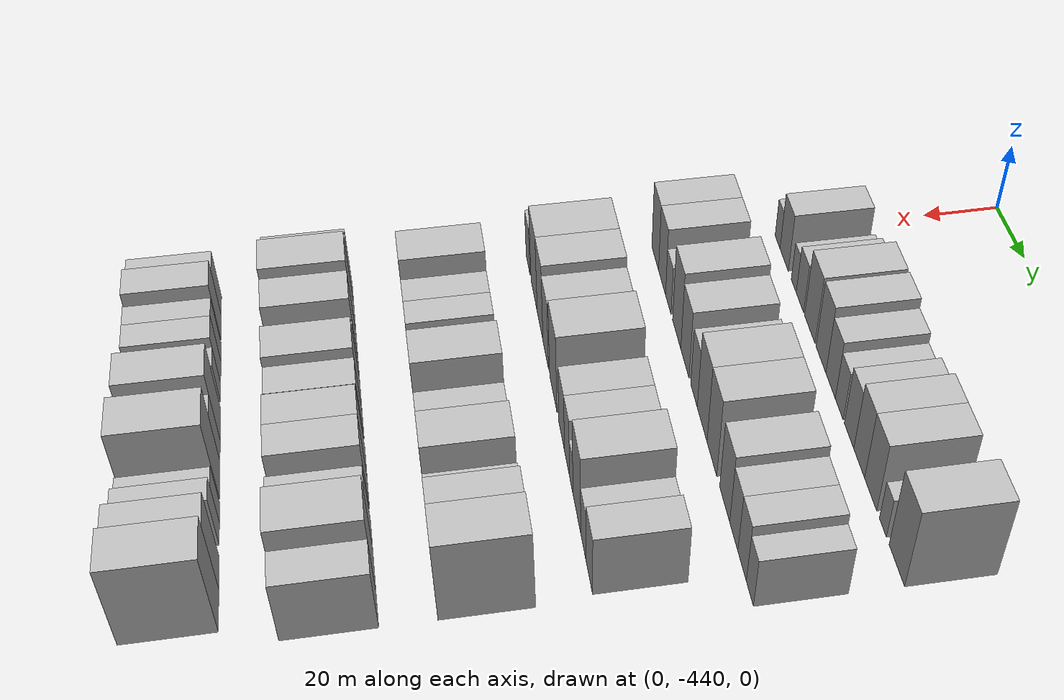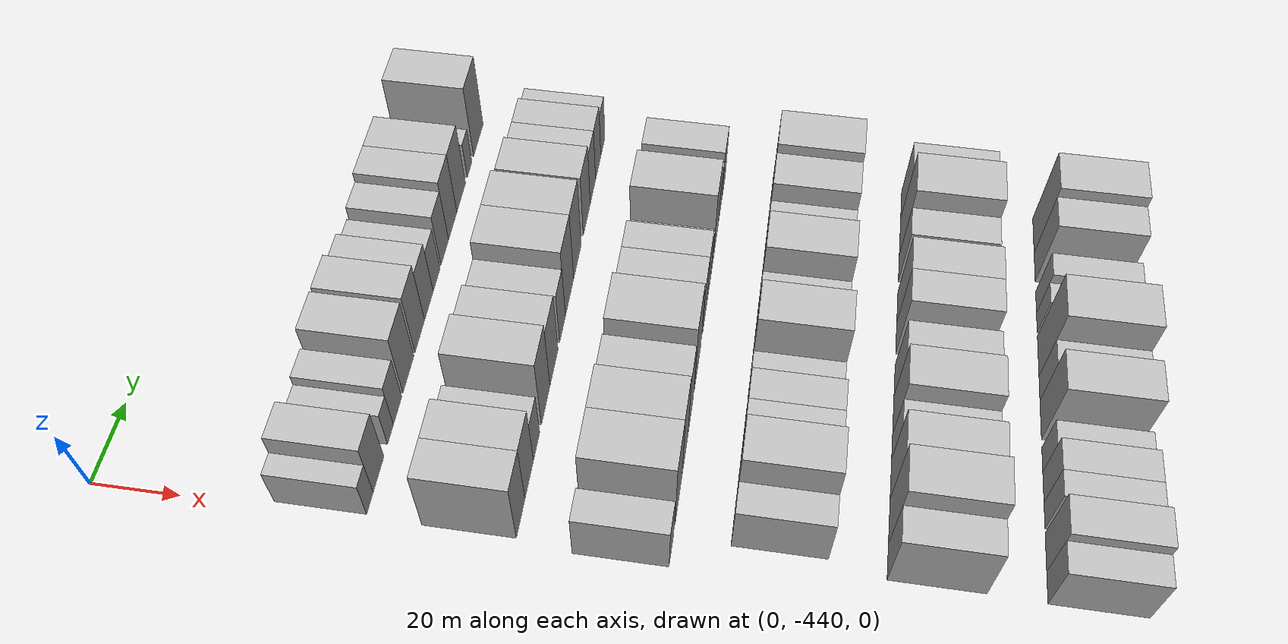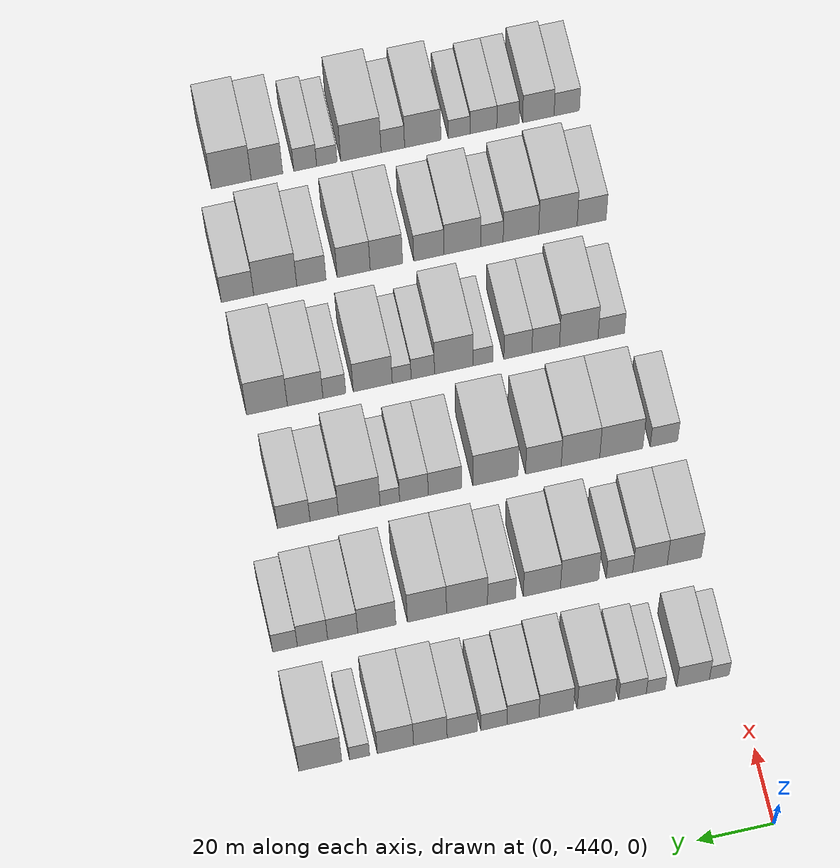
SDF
<sdf version="1.6">
 <world name="default">
  <model name="building_13">
   <static>1</static>
   <pose>50.0000 -435.7678 0 0.000000 0.000000 0.000000</pose>
   <link name="link">
    <pose>0 0 6.00 0 0 0</pose>
    <collision name="collision"><geometry><box><size>20.0000 5.1471 12.0000</size></box></geometry></collision>
    <visual name="visual">
     <cast_shadows>0</cast_shadows>
     <geometry><box><size>20.0000 5.1471 12.0000</size></box></geometry>
     <material>
      <script>
       <uri>model://HANNAS_wall/materials/scripts</uri>
       <uri>model://HANNAS_wall/materials/textures</uri>
       <name>vrc/HANNAS_wall</name>
      </script>
     </material>
    </visual>
   </link>
  </model>
  <model name="building_14">
   <static>1</static>
   <pose>50.0000 -428.8972 0 0.000000 0.000000 0.000000</pose>
   <link name="link">
    <pose>0 0 9.00 0 0 0</pose>
    <collision name="collision"><geometry><box><size>20.0000 8.5943 18.0000</size></box></geometry></collision>
    <visual name="visual">
     <cast_shadows>0</cast_shadows>
     <geometry><box><size>20.0000 8.5943 18.0000</size></box></geometry>
     <material>
      <script>
       <uri>model://HANNAS_wall/materials/scripts</uri>
       <uri>model://HANNAS_wall/materials/textures</uri>
       <name>vrc/HANNAS_wall</name>
      </script>
     </material>
    </visual>
   </link>
  </model>
  <model name="building_15">
   <static>1</static>
   <pose>50.0000 -419.1456 0 0.000000 0.000000 0.000000</pose>
   <link name="link">
    <pose>0 0 6.00 0 0 0</pose>
    <collision name="collision"><geometry><box><size>20.0000 4.9089 12.0000</size></box></geometry></collision>
    <visual name="visual">
     <cast_shadows>0</cast_shadows>
     <geometry><box><size>20.0000 4.9089 12.0000</size></box></geometry>
     <material>
      <script>
       <uri>model://HANNAS_wall/materials/scripts</uri>
       <uri>model://HANNAS_wall/materials/textures</uri>
       <name>vrc/HANNAS_wall</name>
      </script>
     </material>
    </visual>
   </link>
  </model>
  <model name="building_16">
   <static>1</static>
   <pose>50.0000 -413.0892 0 0.000000 0.000000 0.000000</pose>
   <link name="link">
    <pose>0 0 7.50 0 0 0</pose>
    <collision name="collision"><geometry><box><size>20.0000 7.2039 15.0000</size></box></geometry></collision>
    <visual name="visual">
     <cast_shadows>0</cast_shadows>
     <geometry><box><size>20.0000 7.2039 15.0000</size></box></geometry>
     <material>
      <script>
       <uri>model://HANNAS_wall/materials/scripts</uri>
       <uri>model://HANNAS_wall/materials/textures</uri>
       <name>vrc/HANNAS_wall</name>
      </script>
     </material>
    </visual>
   </link>
  </model>
  <model name="building_17">
   <static>1</static>
   <pose>50.0000 -403.5723 0 0.000000 0.000000 0.000000</pose>
   <link name="link">
    <pose>0 0 10.50 0 0 0</pose>
    <collision name="collision"><geometry><box><size>20.0000 9.8299 21.0000</size></box></geometry></collision>
    <visual name="visual">
     <cast_shadows>0</cast_shadows>
     <geometry><box><size>20.0000 9.8299 21.0000</size></box></geometry>
     <material>
      <script>
       <uri>model://HANNAS_wall/materials/scripts</uri>
       <uri>model://HANNAS_wall/materials/textures</uri>
       <name>vrc/HANNAS_wall</name>
      </script>
     </material>
    </visual>
   </link>
  </model>
  <model name="building_18">
   <static>1</static>
   <pose>50.0000 -393.1767 0 0.000000 0.000000 0.000000</pose>
   <link name="link">
    <pose>0 0 10.50 0 0 0</pose>
    <collision name="collision"><geometry><box><size>20.0000 8.9613 21.0000</size></box></geometry></collision>
    <visual name="visual">
     <cast_shadows>0</cast_shadows>
     <geometry><box><size>20.0000 8.9613 21.0000</size></box></geometry>
     <material>
      <script>
       <uri>model://HANNAS_wall/materials/scripts</uri>
       <uri>model://HANNAS_wall/materials/textures</uri>
       <name>vrc/HANNAS_wall</name>
      </script>
     </material>
    </visual>
   </link>
  </model>
  <model name="building_19">
   <static>1</static>
   <pose>50.0000 -384.5406 0 0.000000 0.000000 0.000000</pose>
   <link name="link">
    <pose>0 0 9.00 0 0 0</pose>
    <collision name="collision"><geometry><box><size>20.0000 8.3110 18.0000</size></box></geometry></collision>
    <visual name="visual">
     <cast_shadows>0</cast_shadows>
     <geometry><box><size>20.0000 8.3110 18.0000</size></box></geometry>
     <material>
      <script>
       <uri>model://HANNAS_wall/materials/scripts</uri>
       <uri>model://HANNAS_wall/materials/textures</uri>
       <name>vrc/HANNAS_wall</name>
      </script>
     </material>
    </visual>
   </link>
  </model>
  <model name="building_20">
   <static>1</static>
   <pose>50.0000 -377.0066 0 0.000000 0.000000 0.000000</pose>
   <link name="link">
    <pose>0 0 7.50 0 0 0</pose>
    <collision name="collision"><geometry><box><size>20.0000 6.7570 15.0000</size></box></geometry></collision>
    <visual name="visual">
     <cast_shadows>0</cast_shadows>
     <geometry><box><size>20.0000 6.7570 15.0000</size></box></geometry>
     <material>
      <script>
       <uri>model://HANNAS_wall/materials/scripts</uri>
       <uri>model://HANNAS_wall/materials/textures</uri>
       <name>vrc/HANNAS_wall</name>
      </script>
     </material>
    </visual>
   </link>
  </model>
  <model name="building_21">
   <static>1</static>
   <pose>50.0000 -368.7343 0 0.000000 0.000000 0.000000</pose>
   <link name="link">
    <pose>0 0 9.00 0 0 0</pose>
    <collision name="collision"><geometry><box><size>20.0000 7.7875 18.0000</size></box></geometry></collision>
    <visual name="visual">
     <cast_shadows>0</cast_shadows>
     <geometry><box><size>20.0000 7.7875 18.0000</size></box></geometry>
     <material>
      <script>
       <uri>model://HANNAS_wall/materials/scripts</uri>
       <uri>model://HANNAS_wall/materials/textures</uri>
       <name>vrc/HANNAS_wall</name>
      </script>
     </material>
    </visual>
   </link>
  </model>
  <model name="building_22">
   <static>1</static>
   <pose>50.0000 -360.5023 0 0.000000 0.000000 0.000000</pose>
   <link name="link">
    <pose>0 0 10.50 0 0 0</pose>
    <collision name="collision"><geometry><box><size>20.0000 8.6766 21.0000</size></box></geometry></collision>
    <visual name="visual">
     <cast_shadows>0</cast_shadows>
     <geometry><box><size>20.0000 8.6766 21.0000</size></box></geometry>
     <material>
      <script>
       <uri>model://HANNAS_wall/materials/scripts</uri>
       <uri>model://HANNAS_wall/materials/textures</uri>
       <name>vrc/HANNAS_wall</name>
      </script>
     </material>
    </visual>
   </link>
  </model>
  <model name="building_23">
   <static>1</static>
   <pose>50.0000 -351.4642 0 0.000000 0.000000 0.000000</pose>
   <link name="link">
    <pose>0 0 10.50 0 0 0</pose>
    <collision name="collision"><geometry><box><size>20.0000 9.3995 21.0000</size></box></geometry></collision>
    <visual name="visual">
     <cast_shadows>0</cast_shadows>
     <geometry><box><size>20.0000 9.3995 21.0000</size></box></geometry>
     <material>
      <script>
       <uri>model://HANNAS_wall/materials/scripts</uri>
       <uri>model://HANNAS_wall/materials/textures</uri>
       <name>vrc/HANNAS_wall</name>
      </script>
     </material>
    </visual>
   </link>
  </model>
  <model name="building_24">
   <static>1</static>
   <pose>50.0000 -342.1677 0 0.000000 0.000000 0.000000</pose>
   <link name="link">
    <pose>0 0 6.00 0 0 0</pose>
    <collision name="collision"><geometry><box><size>20.0000 5.1936 12.0000</size></box></geometry></collision>
    <visual name="visual">
     <cast_shadows>0</cast_shadows>
     <geometry><box><size>20.0000 5.1936 12.0000</size></box></geometry>
     <material>
      <script>
       <uri>model://HANNAS_wall/materials/scripts</uri>
       <uri>model://HANNAS_wall/materials/textures</uri>
       <name>vrc/HANNAS_wall</name>
      </script>
     </material>
    </visual>
   </link>
  </model>
  <model name="building_25">
   <static>1</static>
   <pose>50.0000 -332.0227 0 0.000000 0.000000 0.000000</pose>
   <link name="link">
    <pose>0 0 12.00 0 0 0</pose>
    <collision name="collision"><geometry><box><size>20.0000 11.0964 24.0000</size></box></geometry></collision>
    <visual name="visual">
     <cast_shadows>0</cast_shadows>
     <geometry><box><size>20.0000 11.0964 24.0000</size></box></geometry>
     <material>
      <script>
       <uri>model://HANNAS_wall/materials/scripts</uri>
       <uri>model://HANNAS_wall/materials/textures</uri>
       <name>vrc/HANNAS_wall</name>
      </script>
     </material>
    </visual>
   </link>
  </model>
  <model name="building_141">
   <static>1</static>
   <pose>82.0000 -434.5247 0 0.000000 0.000000 0.000000</pose>
   <link name="link">
    <pose>0 0 10.50 0 0 0</pose>
    <collision name="collision"><geometry><box><size>20.0000 9.0126 21.0000</size></box></geometry></collision>
    <visual name="visual">
     <cast_shadows>0</cast_shadows>
     <geometry><box><size>20.0000 9.0126 21.0000</size></box></geometry>
     <material>
      <script>
       <uri>model://HANNAS_wall/materials/scripts</uri>
       <uri>model://HANNAS_wall/materials/textures</uri>
       <name>vrc/HANNAS_wall</name>
      </script>
     </material>
    </visual>
   </link>
  </model>
  <model name="building_142">
   <static>1</static>
   <pose>82.0000 -425.4693 0 0.000000 0.000000 0.000000</pose>
   <link name="link">
    <pose>0 0 10.50 0 0 0</pose>
    <collision name="collision"><geometry><box><size>20.0000 9.0983 21.0000</size></box></geometry></collision>
    <visual name="visual">
     <cast_shadows>0</cast_shadows>
     <geometry><box><size>20.0000 9.0983 21.0000</size></box></geometry>
     <material>
      <script>
       <uri>model://HANNAS_wall/materials/scripts</uri>
       <uri>model://HANNAS_wall/materials/textures</uri>
       <name>vrc/HANNAS_wall</name>
      </script>
     </material>
    </visual>
   </link>
  </model>
  <model name="building_143">
   <static>1</static>
   <pose>82.0000 -417.4238 0 0.000000 0.000000 0.000000</pose>
   <link name="link">
    <pose>0 0 7.50 0 0 0</pose>
    <collision name="collision"><geometry><box><size>20.0000 6.9927 15.0000</size></box></geometry></collision>
    <visual name="visual">
     <cast_shadows>0</cast_shadows>
     <geometry><box><size>20.0000 6.9927 15.0000</size></box></geometry>
     <material>
      <script>
       <uri>model://HANNAS_wall/materials/scripts</uri>
       <uri>model://HANNAS_wall/materials/textures</uri>
       <name>vrc/HANNAS_wall</name>
      </script>
     </material>
    </visual>
   </link>
  </model>
  <model name="building_144">
   <static>1</static>
   <pose>82.0000 -406.9069 0 0.000000 0.000000 0.000000</pose>
   <link name="link">
    <pose>0 0 12.00 0 0 0</pose>
    <collision name="collision"><geometry><box><size>20.0000 10.0411 24.0000</size></box></geometry></collision>
    <visual name="visual">
     <cast_shadows>0</cast_shadows>
     <geometry><box><size>20.0000 10.0411 24.0000</size></box></geometry>
     <material>
      <script>
       <uri>model://HANNAS_wall/materials/scripts</uri>
       <uri>model://HANNAS_wall/materials/textures</uri>
       <name>vrc/HANNAS_wall</name>
      </script>
     </material>
    </visual>
   </link>
  </model>
  <model name="building_145">
   <static>1</static>
   <pose>82.0000 -397.0070 0 0.000000 0.000000 0.000000</pose>
   <link name="link">
    <pose>0 0 10.50 0 0 0</pose>
    <collision name="collision"><geometry><box><size>20.0000 9.7587 21.0000</size></box></geometry></collision>
    <visual name="visual">
     <cast_shadows>0</cast_shadows>
     <geometry><box><size>20.0000 9.7587 21.0000</size></box></geometry>
     <material>
      <script>
       <uri>model://HANNAS_wall/materials/scripts</uri>
       <uri>model://HANNAS_wall/materials/textures</uri>
       <name>vrc/HANNAS_wall</name>
      </script>
     </material>
    </visual>
   </link>
  </model>
  <model name="building_146">
   <static>1</static>
   <pose>82.0000 -386.4275 0 0.000000 0.000000 0.000000</pose>
   <link name="link">
    <pose>0 0 9.00 0 0 0</pose>
    <collision name="collision"><geometry><box><size>20.0000 7.4004 18.0000</size></box></geometry></collision>
    <visual name="visual">
     <cast_shadows>0</cast_shadows>
     <geometry><box><size>20.0000 7.4004 18.0000</size></box></geometry>
     <material>
      <script>
       <uri>model://HANNAS_wall/materials/scripts</uri>
       <uri>model://HANNAS_wall/materials/textures</uri>
       <name>vrc/HANNAS_wall</name>
      </script>
     </material>
    </visual>
   </link>
  </model>
  <model name="building_147">
   <static>1</static>
   <pose>82.0000 -377.3561 0 0.000000 0.000000 0.000000</pose>
   <link name="link">
    <pose>0 0 12.00 0 0 0</pose>
    <collision name="collision"><geometry><box><size>20.0000 10.7424 24.0000</size></box></geometry></collision>
    <visual name="visual">
     <cast_shadows>0</cast_shadows>
     <geometry><box><size>20.0000 10.7424 24.0000</size></box></geometry>
     <material>
      <script>
       <uri>model://HANNAS_wall/materials/scripts</uri>
       <uri>model://HANNAS_wall/materials/textures</uri>
       <name>vrc/HANNAS_wall</name>
      </script>
     </material>
    </visual>
   </link>
  </model>
  <model name="building_148">
   <static>1</static>
   <pose>82.0000 -366.8621 0 0.000000 0.000000 0.000000</pose>
   <link name="link">
    <pose>0 0 12.00 0 0 0</pose>
    <collision name="collision"><geometry><box><size>20.0000 10.2456 24.0000</size></box></geometry></collision>
    <visual name="visual">
     <cast_shadows>0</cast_shadows>
     <geometry><box><size>20.0000 10.2456 24.0000</size></box></geometry>
     <material>
      <script>
       <uri>model://HANNAS_wall/materials/scripts</uri>
       <uri>model://HANNAS_wall/materials/textures</uri>
       <name>vrc/HANNAS_wall</name>
      </script>
     </material>
    </visual>
   </link>
  </model>
  <model name="building_149">
   <static>1</static>
   <pose>82.0000 -353.7401 0 0.000000 0.000000 0.000000</pose>
   <link name="link">
    <pose>0 0 10.50 0 0 0</pose>
    <collision name="collision"><geometry><box><size>20.0000 9.9982 21.0000</size></box></geometry></collision>
    <visual name="visual">
     <cast_shadows>0</cast_shadows>
     <geometry><box><size>20.0000 9.9982 21.0000</size></box></geometry>
     <material>
      <script>
       <uri>model://HANNAS_wall/materials/scripts</uri>
       <uri>model://HANNAS_wall/materials/textures</uri>
       <name>vrc/HANNAS_wall</name>
      </script>
     </material>
    </visual>
   </link>
  </model>
  <model name="building_150">
   <static>1</static>
   <pose>82.0000 -344.8240 0 0.000000 0.000000 0.000000</pose>
   <link name="link">
    <pose>0 0 9.00 0 0 0</pose>
    <collision name="collision"><geometry><box><size>20.0000 7.8340 18.0000</size></box></geometry></collision>
    <visual name="visual">
     <cast_shadows>0</cast_shadows>
     <geometry><box><size>20.0000 7.8340 18.0000</size></box></geometry>
     <material>
      <script>
       <uri>model://HANNAS_wall/materials/scripts</uri>
       <uri>model://HANNAS_wall/materials/textures</uri>
       <name>vrc/HANNAS_wall</name>
      </script>
     </material>
    </visual>
   </link>
  </model>
  <model name="building_151">
   <static>1</static>
   <pose>82.0000 -336.9530 0 0.000000 0.000000 0.000000</pose>
   <link name="link">
    <pose>0 0 9.00 0 0 0</pose>
    <collision name="collision"><geometry><box><size>20.0000 7.9082 18.0000</size></box></geometry></collision>
    <visual name="visual">
     <cast_shadows>0</cast_shadows>
     <geometry><box><size>20.0000 7.9082 18.0000</size></box></geometry>
     <material>
      <script>
       <uri>model://HANNAS_wall/materials/scripts</uri>
       <uri>model://HANNAS_wall/materials/textures</uri>
       <name>vrc/HANNAS_wall</name>
      </script>
     </material>
    </visual>
   </link>
  </model>
  <model name="building_152">
   <static>1</static>
   <pose>82.0000 -329.7781 0 0.000000 0.000000 0.000000</pose>
   <link name="link">
    <pose>0 0 7.50 0 0 0</pose>
    <collision name="collision"><geometry><box><size>20.0000 6.4416 15.0000</size></box></geometry></collision>
    <visual name="visual">
     <cast_shadows>0</cast_shadows>
     <geometry><box><size>20.0000 6.4416 15.0000</size></box></geometry>
     <material>
      <script>
       <uri>model://HANNAS_wall/materials/scripts</uri>
       <uri>model://HANNAS_wall/materials/textures</uri>
       <name>vrc/HANNAS_wall</name>
      </script>
     </material>
    </visual>
   </link>
  </model>
  <model name="building_255">
   <static>1</static>
   <pose>114.0000 -437.0007 0 0.000000 0.000000 0.000000</pose>
   <link name="link">
    <pose>0 0 7.50 0 0 0</pose>
    <collision name="collision"><geometry><box><size>20.0000 7.3166 15.0000</size></box></geometry></collision>
    <visual name="visual">
     <cast_shadows>0</cast_shadows>
     <geometry><box><size>20.0000 7.3166 15.0000</size></box></geometry>
     <material>
      <script>
       <uri>model://HANNAS_wall/materials/scripts</uri>
       <uri>model://HANNAS_wall/materials/textures</uri>
       <name>vrc/HANNAS_wall</name>
      </script>
     </material>
    </visual>
   </link>
  </model>
  <model name="building_256">
   <static>1</static>
   <pose>114.0000 -425.6222 0 0.000000 0.000000 0.000000</pose>
   <link name="link">
    <pose>0 0 12.00 0 0 0</pose>
    <collision name="collision"><geometry><box><size>20.0000 11.4406 24.0000</size></box></geometry></collision>
    <visual name="visual">
     <cast_shadows>0</cast_shadows>
     <geometry><box><size>20.0000 11.4406 24.0000</size></box></geometry>
     <material>
      <script>
       <uri>model://HANNAS_wall/materials/scripts</uri>
       <uri>model://HANNAS_wall/materials/textures</uri>
       <name>vrc/HANNAS_wall</name>
      </script>
     </material>
    </visual>
   </link>
  </model>
  <model name="building_257">
   <static>1</static>
   <pose>114.0000 -414.7849 0 0.000000 0.000000 0.000000</pose>
   <link name="link">
    <pose>0 0 12.00 0 0 0</pose>
    <collision name="collision"><geometry><box><size>20.0000 10.2339 24.0000</size></box></geometry></collision>
    <visual name="visual">
     <cast_shadows>0</cast_shadows>
     <geometry><box><size>20.0000 10.2339 24.0000</size></box></geometry>
     <material>
      <script>
       <uri>model://HANNAS_wall/materials/scripts</uri>
       <uri>model://HANNAS_wall/materials/textures</uri>
       <name>vrc/HANNAS_wall</name>
      </script>
     </material>
    </visual>
   </link>
  </model>
  <model name="building_258">
   <static>1</static>
   <pose>114.0000 -404.9404 0 0.000000 0.000000 0.000000</pose>
   <link name="link">
    <pose>0 0 10.50 0 0 0</pose>
    <collision name="collision"><geometry><box><size>20.0000 9.4552 21.0000</size></box></geometry></collision>
    <visual name="visual">
     <cast_shadows>0</cast_shadows>
     <geometry><box><size>20.0000 9.4552 21.0000</size></box></geometry>
     <material>
      <script>
       <uri>model://HANNAS_wall/materials/scripts</uri>
       <uri>model://HANNAS_wall/materials/textures</uri>
       <name>vrc/HANNAS_wall</name>
      </script>
     </material>
    </visual>
   </link>
  </model>
  <model name="building_259">
   <static>1</static>
   <pose>114.0000 -392.2170 0 0.000000 0.000000 0.000000</pose>
   <link name="link">
    <pose>0 0 12.00 0 0 0</pose>
    <collision name="collision"><geometry><box><size>20.0000 11.9915 24.0000</size></box></geometry></collision>
    <visual name="visual">
     <cast_shadows>0</cast_shadows>
     <geometry><box><size>20.0000 11.9915 24.0000</size></box></geometry>
     <material>
      <script>
       <uri>model://HANNAS_wall/materials/scripts</uri>
       <uri>model://HANNAS_wall/materials/textures</uri>
       <name>vrc/HANNAS_wall</name>
      </script>
     </material>
    </visual>
   </link>
  </model>
  <model name="building_260">
   <static>1</static>
   <pose>114.0000 -378.8228 0 0.000000 0.000000 0.000000</pose>
   <link name="link">
    <pose>0 0 9.00 0 0 0</pose>
    <collision name="collision"><geometry><box><size>20.0000 8.7969 18.0000</size></box></geometry></collision>
    <visual name="visual">
     <cast_shadows>0</cast_shadows>
     <geometry><box><size>20.0000 8.7969 18.0000</size></box></geometry>
     <material>
      <script>
       <uri>model://HANNAS_wall/materials/scripts</uri>
       <uri>model://HANNAS_wall/materials/textures</uri>
       <name>vrc/HANNAS_wall</name>
      </script>
     </material>
    </visual>
   </link>
  </model>
  <model name="building_261">
   <static>1</static>
   <pose>114.0000 -370.6444 0 0.000000 0.000000 0.000000</pose>
   <link name="link">
    <pose>0 0 9.00 0 0 0</pose>
    <collision name="collision"><geometry><box><size>20.0000 7.5599 18.0000</size></box></geometry></collision>
    <visual name="visual">
     <cast_shadows>0</cast_shadows>
     <geometry><box><size>20.0000 7.5599 18.0000</size></box></geometry>
     <material>
      <script>
       <uri>model://HANNAS_wall/materials/scripts</uri>
       <uri>model://HANNAS_wall/materials/textures</uri>
       <name>vrc/HANNAS_wall</name>
      </script>
     </material>
    </visual>
   </link>
  </model>
  <model name="building_262">
   <static>1</static>
   <pose>114.0000 -364.2896 0 0.000000 0.000000 0.000000</pose>
   <link name="link">
    <pose>0 0 6.00 0 0 0</pose>
    <collision name="collision"><geometry><box><size>20.0000 5.1499 12.0000</size></box></geometry></collision>
    <visual name="visual">
     <cast_shadows>0</cast_shadows>
     <geometry><box><size>20.0000 5.1499 12.0000</size></box></geometry>
     <material>
      <script>
       <uri>model://HANNAS_wall/materials/scripts</uri>
       <uri>model://HANNAS_wall/materials/textures</uri>
       <name>vrc/HANNAS_wall</name>
      </script>
     </material>
    </visual>
   </link>
  </model>
  <model name="building_263">
   <static>1</static>
   <pose>114.0000 -356.2101 0 0.000000 0.000000 0.000000</pose>
   <link name="link">
    <pose>0 0 12.00 0 0 0</pose>
    <collision name="collision"><geometry><box><size>20.0000 11.0090 24.0000</size></box></geometry></collision>
    <visual name="visual">
     <cast_shadows>0</cast_shadows>
     <geometry><box><size>20.0000 11.0090 24.0000</size></box></geometry>
     <material>
      <script>
       <uri>model://HANNAS_wall/materials/scripts</uri>
       <uri>model://HANNAS_wall/materials/textures</uri>
       <name>vrc/HANNAS_wall</name>
      </script>
     </material>
    </visual>
   </link>
  </model>
  <model name="building_264">
   <static>1</static>
   <pose>114.0000 -346.9792 0 0.000000 0.000000 0.000000</pose>
   <link name="link">
    <pose>0 0 7.50 0 0 0</pose>
    <collision name="collision"><geometry><box><size>20.0000 7.4528 15.0000</size></box></geometry></collision>
    <visual name="visual">
     <cast_shadows>0</cast_shadows>
     <geometry><box><size>20.0000 7.4528 15.0000</size></box></geometry>
     <material>
      <script>
       <uri>model://HANNAS_wall/materials/scripts</uri>
       <uri>model://HANNAS_wall/materials/textures</uri>
       <name>vrc/HANNAS_wall</name>
      </script>
     </material>
    </visual>
   </link>
  </model>
  <model name="building_265">
   <static>1</static>
   <pose>114.0000 -338.9525 0 0.000000 0.000000 0.000000</pose>
   <link name="link">
    <pose>0 0 9.00 0 0 0</pose>
    <collision name="collision"><geometry><box><size>20.0000 8.6006 18.0000</size></box></geometry></collision>
    <visual name="visual">
     <cast_shadows>0</cast_shadows>
     <geometry><box><size>20.0000 8.6006 18.0000</size></box></geometry>
     <material>
      <script>
       <uri>model://HANNAS_wall/materials/scripts</uri>
       <uri>model://HANNAS_wall/materials/textures</uri>
       <name>vrc/HANNAS_wall</name>
      </script>
     </material>
    </visual>
   </link>
  </model>
  <model name="building_373">
   <static>1</static>
   <pose>146.0000 -430.6669 0 0.000000 0.000000 0.000000</pose>
   <link name="link">
    <pose>0 0 7.50 0 0 0</pose>
    <collision name="collision"><geometry><box><size>20.0000 7.1043 15.0000</size></box></geometry></collision>
    <visual name="visual">
     <cast_shadows>0</cast_shadows>
     <geometry><box><size>20.0000 7.1043 15.0000</size></box></geometry>
     <material>
      <script>
       <uri>model://HANNAS_wall/materials/scripts</uri>
       <uri>model://HANNAS_wall/materials/textures</uri>
       <name>vrc/HANNAS_wall</name>
      </script>
     </material>
    </visual>
   </link>
  </model>
  <model name="building_374">
   <static>1</static>
   <pose>146.0000 -421.9434 0 0.000000 0.000000 0.000000</pose>
   <link name="link">
    <pose>0 0 12.00 0 0 0</pose>
    <collision name="collision"><geometry><box><size>20.0000 10.3426 24.0000</size></box></geometry></collision>
    <visual name="visual">
     <cast_shadows>0</cast_shadows>
     <geometry><box><size>20.0000 10.3426 24.0000</size></box></geometry>
     <material>
      <script>
       <uri>model://HANNAS_wall/materials/scripts</uri>
       <uri>model://HANNAS_wall/materials/textures</uri>
       <name>vrc/HANNAS_wall</name>
      </script>
     </material>
    </visual>
   </link>
  </model>
  <model name="building_375">
   <static>1</static>
   <pose>146.0000 -413.0792 0 0.000000 0.000000 0.000000</pose>
   <link name="link">
    <pose>0 0 9.00 0 0 0</pose>
    <collision name="collision"><geometry><box><size>20.0000 7.3858 18.0000</size></box></geometry></collision>
    <visual name="visual">
     <cast_shadows>0</cast_shadows>
     <geometry><box><size>20.0000 7.3858 18.0000</size></box></geometry>
     <material>
      <script>
       <uri>model://HANNAS_wall/materials/scripts</uri>
       <uri>model://HANNAS_wall/materials/textures</uri>
       <name>vrc/HANNAS_wall</name>
      </script>
     </material>
    </visual>
   </link>
  </model>
  <model name="building_376">
   <static>1</static>
   <pose>146.0000 -405.6350 0 0.000000 0.000000 0.000000</pose>
   <link name="link">
    <pose>0 0 9.00 0 0 0</pose>
    <collision name="collision"><geometry><box><size>20.0000 7.5027 18.0000</size></box></geometry></collision>
    <visual name="visual">
     <cast_shadows>0</cast_shadows>
     <geometry><box><size>20.0000 7.5027 18.0000</size></box></geometry>
     <material>
      <script>
       <uri>model://HANNAS_wall/materials/scripts</uri>
       <uri>model://HANNAS_wall/materials/textures</uri>
       <name>vrc/HANNAS_wall</name>
      </script>
     </material>
    </visual>
   </link>
  </model>
  <model name="building_377">
   <static>1</static>
   <pose>146.0000 -396.2951 0 0.000000 0.000000 0.000000</pose>
   <link name="link">
    <pose>0 0 6.00 0 0 0</pose>
    <collision name="collision"><geometry><box><size>20.0000 5.1772 12.0000</size></box></geometry></collision>
    <visual name="visual">
     <cast_shadows>0</cast_shadows>
     <geometry><box><size>20.0000 5.1772 12.0000</size></box></geometry>
     <material>
      <script>
       <uri>model://HANNAS_wall/materials/scripts</uri>
       <uri>model://HANNAS_wall/materials/textures</uri>
       <name>vrc/HANNAS_wall</name>
      </script>
     </material>
    </visual>
   </link>
  </model>
  <model name="building_378">
   <static>1</static>
   <pose>146.0000 -388.5202 0 0.000000 0.000000 0.000000</pose>
   <link name="link">
    <pose>0 0 12.00 0 0 0</pose>
    <collision name="collision"><geometry><box><size>20.0000 10.3726 24.0000</size></box></geometry></collision>
    <visual name="visual">
     <cast_shadows>0</cast_shadows>
     <geometry><box><size>20.0000 10.3726 24.0000</size></box></geometry>
     <material>
      <script>
       <uri>model://HANNAS_wall/materials/scripts</uri>
       <uri>model://HANNAS_wall/materials/textures</uri>
       <name>vrc/HANNAS_wall</name>
      </script>
     </material>
    </visual>
   </link>
  </model>
  <model name="building_379">
   <static>1</static>
   <pose>146.0000 -380.2127 0 0.000000 0.000000 0.000000</pose>
   <link name="link">
    <pose>0 0 7.50 0 0 0</pose>
    <collision name="collision"><geometry><box><size>20.0000 6.2424 15.0000</size></box></geometry></collision>
    <visual name="visual">
     <cast_shadows>0</cast_shadows>
     <geometry><box><size>20.0000 6.2424 15.0000</size></box></geometry>
     <material>
      <script>
       <uri>model://HANNAS_wall/materials/scripts</uri>
       <uri>model://HANNAS_wall/materials/textures</uri>
       <name>vrc/HANNAS_wall</name>
      </script>
     </material>
    </visual>
   </link>
  </model>
  <model name="building_380">
   <static>1</static>
   <pose>146.0000 -374.5771 0 0.000000 0.000000 0.000000</pose>
   <link name="link">
    <pose>0 0 6.00 0 0 0</pose>
    <collision name="collision"><geometry><box><size>20.0000 5.0289 12.0000</size></box></geometry></collision>
    <visual name="visual">
     <cast_shadows>0</cast_shadows>
     <geometry><box><size>20.0000 5.0289 12.0000</size></box></geometry>
     <material>
      <script>
       <uri>model://HANNAS_wall/materials/scripts</uri>
       <uri>model://HANNAS_wall/materials/textures</uri>
       <name>vrc/HANNAS_wall</name>
      </script>
     </material>
    </visual>
   </link>
  </model>
  <model name="building_381">
   <static>1</static>
   <pose>146.0000 -366.8701 0 0.000000 0.000000 0.000000</pose>
   <link name="link">
    <pose>0 0 10.50 0 0 0</pose>
    <collision name="collision"><geometry><box><size>20.0000 10.3851 21.0000</size></box></geometry></collision>
    <visual name="visual">
     <cast_shadows>0</cast_shadows>
     <geometry><box><size>20.0000 10.3851 21.0000</size></box></geometry>
     <material>
      <script>
       <uri>model://HANNAS_wall/materials/scripts</uri>
       <uri>model://HANNAS_wall/materials/textures</uri>
       <name>vrc/HANNAS_wall</name>
      </script>
     </material>
    </visual>
   </link>
  </model>
  <model name="building_382">
   <static>1</static>
   <pose>146.0000 -356.6480 0 0.000000 0.000000 0.000000</pose>
   <link name="link">
    <pose>0 0 7.50 0 0 0</pose>
    <collision name="collision"><geometry><box><size>20.0000 6.0591 15.0000</size></box></geometry></collision>
    <visual name="visual">
     <cast_shadows>0</cast_shadows>
     <geometry><box><size>20.0000 6.0591 15.0000</size></box></geometry>
     <material>
      <script>
       <uri>model://HANNAS_wall/materials/scripts</uri>
       <uri>model://HANNAS_wall/materials/textures</uri>
       <name>vrc/HANNAS_wall</name>
      </script>
     </material>
    </visual>
   </link>
  </model>
  <model name="building_383">
   <static>1</static>
   <pose>146.0000 -348.8809 0 0.000000 0.000000 0.000000</pose>
   <link name="link">
    <pose>0 0 10.50 0 0 0</pose>
    <collision name="collision"><geometry><box><size>20.0000 9.4752 21.0000</size></box></geometry></collision>
    <visual name="visual">
     <cast_shadows>0</cast_shadows>
     <geometry><box><size>20.0000 9.4752 21.0000</size></box></geometry>
     <material>
      <script>
       <uri>model://HANNAS_wall/materials/scripts</uri>
       <uri>model://HANNAS_wall/materials/textures</uri>
       <name>vrc/HANNAS_wall</name>
      </script>
     </material>
    </visual>
   </link>
  </model>
  <model name="building_384">
   <static>1</static>
   <pose>146.0000 -338.7127 0 0.000000 0.000000 0.000000</pose>
   <link name="link">
    <pose>0 0 12.00 0 0 0</pose>
    <collision name="collision"><geometry><box><size>20.0000 10.8611 24.0000</size></box></geometry></collision>
    <visual name="visual">
     <cast_shadows>0</cast_shadows>
     <geometry><box><size>20.0000 10.8611 24.0000</size></box></geometry>
     <material>
      <script>
       <uri>model://HANNAS_wall/materials/scripts</uri>
       <uri>model://HANNAS_wall/materials/textures</uri>
       <name>vrc/HANNAS_wall</name>
      </script>
     </material>
    </visual>
   </link>
  </model>
  <model name="building_494">
   <static>1</static>
   <pose>178.0000 -433.0573 0 0.000000 0.000000 0.000000</pose>
   <link name="link">
    <pose>0 0 9.00 0 0 0</pose>
    <collision name="collision"><geometry><box><size>20.0000 7.8750 18.0000</size></box></geometry></collision>
    <visual name="visual">
     <cast_shadows>0</cast_shadows>
     <geometry><box><size>20.0000 7.8750 18.0000</size></box></geometry>
     <material>
      <script>
       <uri>model://HANNAS_wall/materials/scripts</uri>
       <uri>model://HANNAS_wall/materials/textures</uri>
       <name>vrc/HANNAS_wall</name>
      </script>
     </material>
    </visual>
   </link>
  </model>
  <model name="building_495">
   <static>1</static>
   <pose>178.0000 -423.9317 0 0.000000 0.000000 0.000000</pose>
   <link name="link">
    <pose>0 0 12.00 0 0 0</pose>
    <collision name="collision"><geometry><box><size>20.0000 10.3763 24.0000</size></box></geometry></collision>
    <visual name="visual">
     <cast_shadows>0</cast_shadows>
     <geometry><box><size>20.0000 10.3763 24.0000</size></box></geometry>
     <material>
      <script>
       <uri>model://HANNAS_wall/materials/scripts</uri>
       <uri>model://HANNAS_wall/materials/textures</uri>
       <name>vrc/HANNAS_wall</name>
      </script>
     </material>
    </visual>
   </link>
  </model>
  <model name="building_496">
   <static>1</static>
   <pose>178.0000 -413.9321 0 0.000000 0.000000 0.000000</pose>
   <link name="link">
    <pose>0 0 10.50 0 0 0</pose>
    <collision name="collision"><geometry><box><size>20.0000 9.6229 21.0000</size></box></geometry></collision>
    <visual name="visual">
     <cast_shadows>0</cast_shadows>
     <geometry><box><size>20.0000 9.6229 21.0000</size></box></geometry>
     <material>
      <script>
       <uri>model://HANNAS_wall/materials/scripts</uri>
       <uri>model://HANNAS_wall/materials/textures</uri>
       <name>vrc/HANNAS_wall</name>
      </script>
     </material>
    </visual>
   </link>
  </model>
  <model name="building_497">
   <static>1</static>
   <pose>178.0000 -406.0891 0 0.000000 0.000000 0.000000</pose>
   <link name="link">
    <pose>0 0 7.50 0 0 0</pose>
    <collision name="collision"><geometry><box><size>20.0000 6.0630 15.0000</size></box></geometry></collision>
    <visual name="visual">
     <cast_shadows>0</cast_shadows>
     <geometry><box><size>20.0000 6.0630 15.0000</size></box></geometry>
     <material>
      <script>
       <uri>model://HANNAS_wall/materials/scripts</uri>
       <uri>model://HANNAS_wall/materials/textures</uri>
       <name>vrc/HANNAS_wall</name>
      </script>
     </material>
    </visual>
   </link>
  </model>
  <model name="building_498">
   <static>1</static>
   <pose>178.0000 -398.1159 0 0.000000 0.000000 0.000000</pose>
   <link name="link">
    <pose>0 0 10.50 0 0 0</pose>
    <collision name="collision"><geometry><box><size>20.0000 9.8834 21.0000</size></box></geometry></collision>
    <visual name="visual">
     <cast_shadows>0</cast_shadows>
     <geometry><box><size>20.0000 9.8834 21.0000</size></box></geometry>
     <material>
      <script>
       <uri>model://HANNAS_wall/materials/scripts</uri>
       <uri>model://HANNAS_wall/materials/textures</uri>
       <name>vrc/HANNAS_wall</name>
      </script>
     </material>
    </visual>
   </link>
  </model>
  <model name="building_499">
   <static>1</static>
   <pose>178.0000 -389.0788 0 0.000000 0.000000 0.000000</pose>
   <link name="link">
    <pose>0 0 9.00 0 0 0</pose>
    <collision name="collision"><geometry><box><size>20.0000 8.1909 18.0000</size></box></geometry></collision>
    <visual name="visual">
     <cast_shadows>0</cast_shadows>
     <geometry><box><size>20.0000 8.1909 18.0000</size></box></geometry>
     <material>
      <script>
       <uri>model://HANNAS_wall/materials/scripts</uri>
       <uri>model://HANNAS_wall/materials/textures</uri>
       <name>vrc/HANNAS_wall</name>
      </script>
     </material>
    </visual>
   </link>
  </model>
  <model name="building_500">
   <static>1</static>
   <pose>178.0000 -377.6334 0 0.000000 0.000000 0.000000</pose>
   <link name="link">
    <pose>0 0 10.50 0 0 0</pose>
    <collision name="collision"><geometry><box><size>20.0000 8.7001 21.0000</size></box></geometry></collision>
    <visual name="visual">
     <cast_shadows>0</cast_shadows>
     <geometry><box><size>20.0000 8.7001 21.0000</size></box></geometry>
     <material>
      <script>
       <uri>model://HANNAS_wall/materials/scripts</uri>
       <uri>model://HANNAS_wall/materials/textures</uri>
       <name>vrc/HANNAS_wall</name>
      </script>
     </material>
    </visual>
   </link>
  </model>
  <model name="building_501">
   <static>1</static>
   <pose>178.0000 -368.8442 0 0.000000 0.000000 0.000000</pose>
   <link name="link">
    <pose>0 0 10.50 0 0 0</pose>
    <collision name="collision"><geometry><box><size>20.0000 8.8783 21.0000</size></box></geometry></collision>
    <visual name="visual">
     <cast_shadows>0</cast_shadows>
     <geometry><box><size>20.0000 8.8783 21.0000</size></box></geometry>
     <material>
      <script>
       <uri>model://HANNAS_wall/materials/scripts</uri>
       <uri>model://HANNAS_wall/materials/textures</uri>
       <name>vrc/HANNAS_wall</name>
      </script>
     </material>
    </visual>
   </link>
  </model>
  <model name="building_502">
   <static>1</static>
   <pose>178.0000 -357.4786 0 0.000000 0.000000 0.000000</pose>
   <link name="link">
    <pose>0 0 9.00 0 0 0</pose>
    <collision name="collision"><geometry><box><size>20.0000 7.8529 18.0000</size></box></geometry></collision>
    <visual name="visual">
     <cast_shadows>0</cast_shadows>
     <geometry><box><size>20.0000 7.8529 18.0000</size></box></geometry>
     <material>
      <script>
       <uri>model://HANNAS_wall/materials/scripts</uri>
       <uri>model://HANNAS_wall/materials/textures</uri>
       <name>vrc/HANNAS_wall</name>
      </script>
     </material>
    </visual>
   </link>
  </model>
  <model name="building_503">
   <static>1</static>
   <pose>178.0000 -347.7704 0 0.000000 0.000000 0.000000</pose>
   <link name="link">
    <pose>0 0 12.00 0 0 0</pose>
    <collision name="collision"><geometry><box><size>20.0000 11.5634 24.0000</size></box></geometry></collision>
    <visual name="visual">
     <cast_shadows>0</cast_shadows>
     <geometry><box><size>20.0000 11.5634 24.0000</size></box></geometry>
     <material>
      <script>
       <uri>model://HANNAS_wall/materials/scripts</uri>
       <uri>model://HANNAS_wall/materials/textures</uri>
       <name>vrc/HANNAS_wall</name>
      </script>
     </material>
    </visual>
   </link>
  </model>
  <model name="building_504">
   <static>1</static>
   <pose>178.0000 -337.6462 0 0.000000 0.000000 0.000000</pose>
   <link name="link">
    <pose>0 0 9.00 0 0 0</pose>
    <collision name="collision"><geometry><box><size>20.0000 8.6850 18.0000</size></box></geometry></collision>
    <visual name="visual">
     <cast_shadows>0</cast_shadows>
     <geometry><box><size>20.0000 8.6850 18.0000</size></box></geometry>
     <material>
      <script>
       <uri>model://HANNAS_wall/materials/scripts</uri>
       <uri>model://HANNAS_wall/materials/textures</uri>
       <name>vrc/HANNAS_wall</name>
      </script>
     </material>
    </visual>
   </link>
  </model>
  <model name="building_617">
   <static>1</static>
   <pose>210.0000 -433.9160 0 0.000000 0.000000 0.000000</pose>
   <link name="link">
    <pose>0 0 7.50 0 0 0</pose>
    <collision name="collision"><geometry><box><size>20.0000 6.9048 15.0000</size></box></geometry></collision>
    <visual name="visual">
     <cast_shadows>0</cast_shadows>
     <geometry><box><size>20.0000 6.9048 15.0000</size></box></geometry>
     <material>
      <script>
       <uri>model://HANNAS_wall/materials/scripts</uri>
       <uri>model://HANNAS_wall/materials/textures</uri>
       <name>vrc/HANNAS_wall</name>
      </script>
     </material>
    </visual>
   </link>
  </model>
  <model name="building_618">
   <static>1</static>
   <pose>210.0000 -426.1665 0 0.000000 0.000000 0.000000</pose>
   <link name="link">
    <pose>0 0 9.00 0 0 0</pose>
    <collision name="collision"><geometry><box><size>20.0000 8.5943 18.0000</size></box></geometry></collision>
    <visual name="visual">
     <cast_shadows>0</cast_shadows>
     <geometry><box><size>20.0000 8.5943 18.0000</size></box></geometry>
     <material>
      <script>
       <uri>model://HANNAS_wall/materials/scripts</uri>
       <uri>model://HANNAS_wall/materials/textures</uri>
       <name>vrc/HANNAS_wall</name>
      </script>
     </material>
    </visual>
   </link>
  </model>
  <model name="building_619">
   <static>1</static>
   <pose>210.0000 -417.8441 0 0.000000 0.000000 0.000000</pose>
   <link name="link">
    <pose>0 0 7.50 0 0 0</pose>
    <collision name="collision"><geometry><box><size>20.0000 6.0506 15.0000</size></box></geometry></collision>
    <visual name="visual">
     <cast_shadows>0</cast_shadows>
     <geometry><box><size>20.0000 6.0506 15.0000</size></box></geometry>
     <material>
      <script>
       <uri>model://HANNAS_wall/materials/scripts</uri>
       <uri>model://HANNAS_wall/materials/textures</uri>
       <name>vrc/HANNAS_wall</name>
      </script>
     </material>
    </visual>
   </link>
  </model>
  <model name="building_620">
   <static>1</static>
   <pose>210.0000 -411.1629 0 0.000000 0.000000 0.000000</pose>
   <link name="link">
    <pose>0 0 7.50 0 0 0</pose>
    <collision name="collision"><geometry><box><size>20.0000 7.3116 15.0000</size></box></geometry></collision>
    <visual name="visual">
     <cast_shadows>0</cast_shadows>
     <geometry><box><size>20.0000 7.3116 15.0000</size></box></geometry>
     <material>
      <script>
       <uri>model://HANNAS_wall/materials/scripts</uri>
       <uri>model://HANNAS_wall/materials/textures</uri>
       <name>vrc/HANNAS_wall</name>
      </script>
     </material>
    </visual>
   </link>
  </model>
  <model name="building_621">
   <static>1</static>
   <pose>210.0000 -404.5388 0 0.000000 0.000000 0.000000</pose>
   <link name="link">
    <pose>0 0 6.00 0 0 0</pose>
    <collision name="collision"><geometry><box><size>20.0000 5.9367 12.0000</size></box></geometry></collision>
    <visual name="visual">
     <cast_shadows>0</cast_shadows>
     <geometry><box><size>20.0000 5.9367 12.0000</size></box></geometry>
     <material>
      <script>
       <uri>model://HANNAS_wall/materials/scripts</uri>
       <uri>model://HANNAS_wall/materials/textures</uri>
       <name>vrc/HANNAS_wall</name>
      </script>
     </material>
    </visual>
   </link>
  </model>
  <model name="building_622">
   <static>1</static>
   <pose>210.0000 -394.6381 0 0.000000 0.000000 0.000000</pose>
   <link name="link">
    <pose>0 0 10.50 0 0 0</pose>
    <collision name="collision"><geometry><box><size>20.0000 9.8648 21.0000</size></box></geometry></collision>
    <visual name="visual">
     <cast_shadows>0</cast_shadows>
     <geometry><box><size>20.0000 9.8648 21.0000</size></box></geometry>
     <material>
      <script>
       <uri>model://HANNAS_wall/materials/scripts</uri>
       <uri>model://HANNAS_wall/materials/textures</uri>
       <name>vrc/HANNAS_wall</name>
      </script>
     </material>
    </visual>
   </link>
  </model>
  <model name="building_623">
   <static>1</static>
   <pose>210.0000 -386.5113 0 0.000000 0.000000 0.000000</pose>
   <link name="link">
    <pose>0 0 7.50 0 0 0</pose>
    <collision name="collision"><geometry><box><size>20.0000 6.3886 15.0000</size></box></geometry></collision>
    <visual name="visual">
     <cast_shadows>0</cast_shadows>
     <geometry><box><size>20.0000 6.3886 15.0000</size></box></geometry>
     <material>
      <script>
       <uri>model://HANNAS_wall/materials/scripts</uri>
       <uri>model://HANNAS_wall/materials/textures</uri>
       <name>vrc/HANNAS_wall</name>
      </script>
     </material>
    </visual>
   </link>
  </model>
  <model name="building_624">
   <static>1</static>
   <pose>210.0000 -377.8408 0 0.000000 0.000000 0.000000</pose>
   <link name="link">
    <pose>0 0 12.00 0 0 0</pose>
    <collision name="collision"><geometry><box><size>20.0000 10.9525 24.0000</size></box></geometry></collision>
    <visual name="visual">
     <cast_shadows>0</cast_shadows>
     <geometry><box><size>20.0000 10.9525 24.0000</size></box></geometry>
     <material>
      <script>
       <uri>model://HANNAS_wall/materials/scripts</uri>
       <uri>model://HANNAS_wall/materials/textures</uri>
       <name>vrc/HANNAS_wall</name>
      </script>
     </material>
    </visual>
   </link>
  </model>
  <model name="building_625">
   <static>1</static>
   <pose>210.0000 -368.5959 0 0.000000 0.000000 0.000000</pose>
   <link name="link">
    <pose>0 0 6.00 0 0 0</pose>
    <collision name="collision"><geometry><box><size>20.0000 5.5372 12.0000</size></box></geometry></collision>
    <visual name="visual">
     <cast_shadows>0</cast_shadows>
     <geometry><box><size>20.0000 5.5372 12.0000</size></box></geometry>
     <material>
      <script>
       <uri>model://HANNAS_wall/materials/scripts</uri>
       <uri>model://HANNAS_wall/materials/textures</uri>
       <name>vrc/HANNAS_wall</name>
      </script>
     </material>
    </visual>
   </link>
  </model>
  <model name="building_626">
   <static>1</static>
   <pose>210.0000 -362.7307 0 0.000000 0.000000 0.000000</pose>
   <link name="link">
    <pose>0 0 7.50 0 0 0</pose>
    <collision name="collision"><geometry><box><size>20.0000 6.1932 15.0000</size></box></geometry></collision>
    <visual name="visual">
     <cast_shadows>0</cast_shadows>
     <geometry><box><size>20.0000 6.1932 15.0000</size></box></geometry>
     <material>
      <script>
       <uri>model://HANNAS_wall/materials/scripts</uri>
       <uri>model://HANNAS_wall/materials/textures</uri>
       <name>vrc/HANNAS_wall</name>
      </script>
     </material>
    </visual>
   </link>
  </model>
  <model name="building_627">
   <static>1</static>
   <pose>210.0000 -352.3669 0 0.000000 0.000000 0.000000</pose>
   <link name="link">
    <pose>0 0 10.50 0 0 0</pose>
    <collision name="collision"><geometry><box><size>20.0000 8.5345 21.0000</size></box></geometry></collision>
    <visual name="visual">
     <cast_shadows>0</cast_shadows>
     <geometry><box><size>20.0000 8.5345 21.0000</size></box></geometry>
     <material>
      <script>
       <uri>model://HANNAS_wall/materials/scripts</uri>
       <uri>model://HANNAS_wall/materials/textures</uri>
       <name>vrc/HANNAS_wall</name>
      </script>
     </material>
    </visual>
   </link>
  </model>
  <model name="building_628">
   <static>1</static>
   <pose>210.0000 -342.7143 0 0.000000 0.000000 0.000000</pose>
   <link name="link">
    <pose>0 0 12.00 0 0 0</pose>
    <collision name="collision"><geometry><box><size>20.0000 10.7706 24.0000</size></box></geometry></collision>
    <visual name="visual">
     <cast_shadows>0</cast_shadows>
     <geometry><box><size>20.0000 10.7706 24.0000</size></box></geometry>
     <material>
      <script>
       <uri>model://HANNAS_wall/materials/scripts</uri>
       <uri>model://HANNAS_wall/materials/textures</uri>
       <name>vrc/HANNAS_wall</name>
      </script>
     </material>
    </visual>
   </link>
  </model>
 </world>
</sdf>
